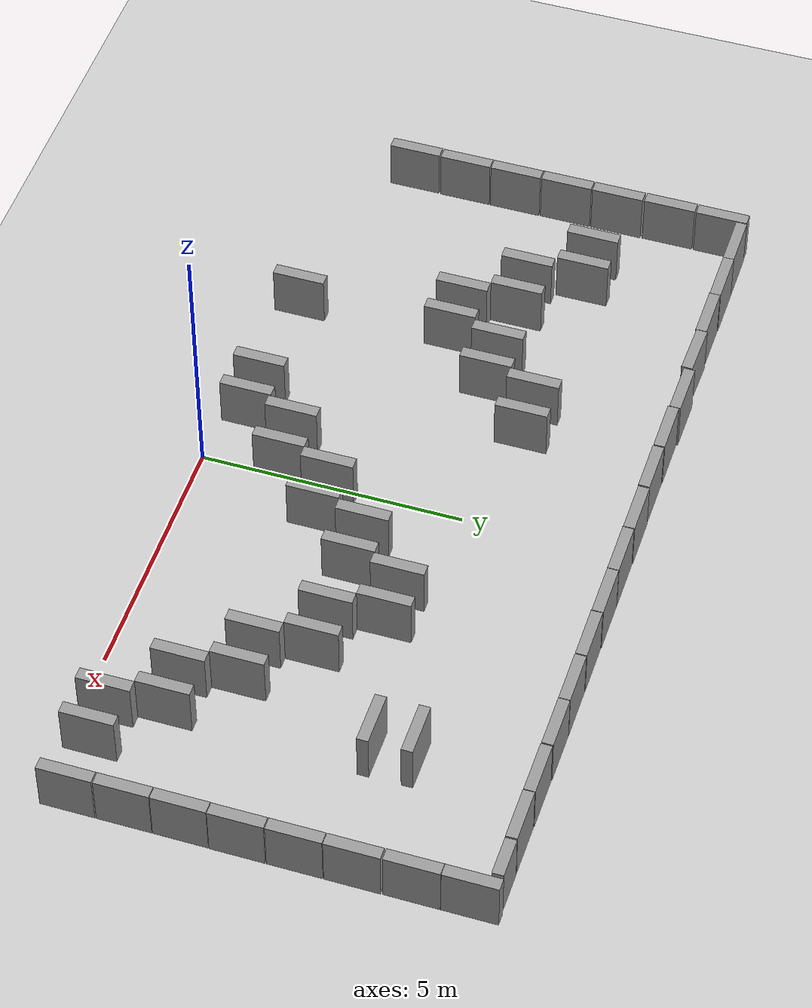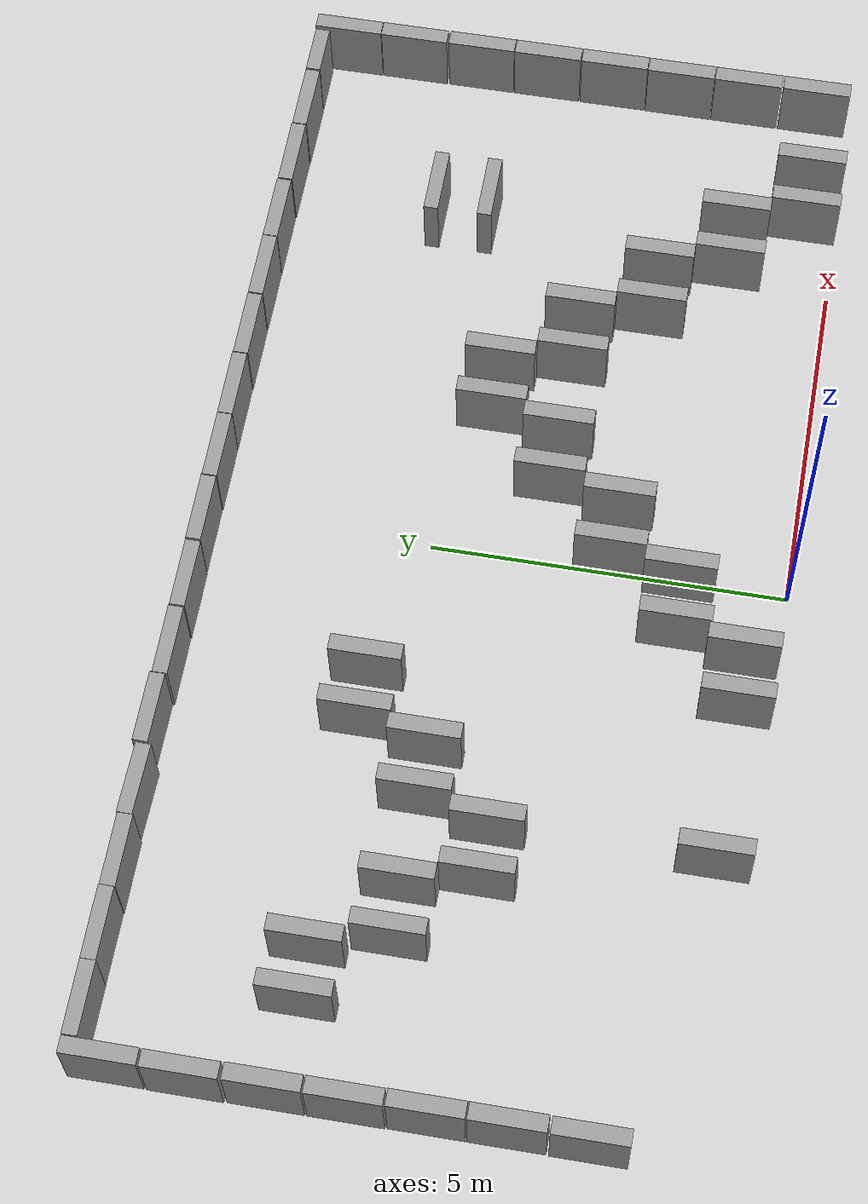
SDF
<sdf version="1.6">
 <world name="default">
  <model name="ground_plane">
   <static>1</static>
   <static>1</static>
   <link name="link">
    <collision name="collision">
     <geometry><plane><normal>0 0 1</normal><size>100 100</size></plane></geometry>
     <surface><friction><ode><mu>100</mu><mu2>50</mu2></ode></friction></surface>
    </collision>
    <visual name="visual">
     <cast_shadows>0</cast_shadows>
     <geometry><plane><normal>0 0 1</normal><size>100 100</size></plane></geometry>
     <material>
      <script><uri>file://media/materials/scripts/gazebo.material</uri><name>Gazebo/Grey</name></script>
     </material>
    </visual>
   </link>
  </model>
  <model name="unit_box_clone">
   <pose>-7.49845 8.11989 0.5 0 -0 0.00017</pose>
   <link name="link">
    <inertial>
     <mass>1</mass>
     <inertia>
      <ixx>0.166667</ixx>
      <ixy>0</ixy>
      <ixz>0</ixz>
      <iyy>0.166667</iyy>
      <iyz>0</iyz>
      <izz>0.166667</izz>
     </inertia>
    </inertial>
    <collision name="collision"><geometry><box><size>1 0.210541 1</size></box></geometry></collision>
    <visual name="visual">
     <geometry><box><size>1 0.210541 1</size></box></geometry>
     <material>
      <script><name>Gazebo/Grey</name><uri>file://media/materials/scripts/gazebo.material</uri></script>
     </material>
    </visual>
   </link>
  </model>
  <model name="unit_box_clone_0">
   <pose>-6.4973 8.11974 0.5 -0 -0 -0.002434</pose>
   <link name="link">
    <inertial>
     <mass>1</mass>
     <inertia>
      <ixx>0.166667</ixx>
      <ixy>0</ixy>
      <ixz>0</ixz>
      <iyy>0.166667</iyy>
      <iyz>0</iyz>
      <izz>0.166667</izz>
     </inertia>
    </inertial>
    <collision name="collision"><geometry><box><size>1 0.210541 1</size></box></geometry></collision>
    <visual name="visual">
     <geometry><box><size>1 0.210541 1</size></box></geometry>
     <material>
      <script><name>Gazebo/Grey</name><uri>file://media/materials/scripts/gazebo.material</uri></script>
     </material>
    </visual>
   </link>
  </model>
  <model name="unit_box_clone_1">
   <pose>-5.49732 8.10849 0.5 -0 -0 -0.002426</pose>
   <link name="link">
    <inertial>
     <mass>1</mass>
     <inertia>
      <ixx>0.166667</ixx>
      <ixy>0</ixy>
      <ixz>0</ixz>
      <iyy>0.166667</iyy>
      <iyz>0</iyz>
      <izz>0.166667</izz>
     </inertia>
    </inertial>
    <collision name="collision"><geometry><box><size>1 0.210541 1</size></box></geometry></collision>
    <visual name="visual">
     <geometry><box><size>1 0.210541 1</size></box></geometry>
     <material>
      <script><name>Gazebo/Grey</name><uri>file://media/materials/scripts/gazebo.material</uri></script>
     </material>
    </visual>
   </link>
  </model>
  <model name="unit_box_clone_2">
   <pose>-4.49485 8.11058 0.499999 1e-06 -2e-06 -0.026985</pose>
   <link name="link">
    <inertial>
     <mass>1</mass>
     <inertia>
      <ixx>0.166667</ixx>
      <ixy>0</ixy>
      <ixz>0</ixz>
      <iyy>0.166667</iyy>
      <iyz>0</iyz>
      <izz>0.166667</izz>
     </inertia>
    </inertial>
    <collision name="collision"><geometry><box><size>1 0.210541 1</size></box></geometry></collision>
    <visual name="visual">
     <geometry><box><size>1 0.210541 1</size></box></geometry>
     <material>
      <script><name>Gazebo/Grey</name><uri>file://media/materials/scripts/gazebo.material</uri></script>
     </material>
    </visual>
   </link>
  </model>
  <model name="unit_box_clone_3">
   <pose>-3.46835 8.15023 0.5 -0 -0 -0.007814</pose>
   <link name="link">
    <inertial>
     <mass>1</mass>
     <inertia>
      <ixx>0.166667</ixx>
      <ixy>0</ixy>
      <ixz>0</ixz>
      <iyy>0.166667</iyy>
      <iyz>0</iyz>
      <izz>0.166667</izz>
     </inertia>
    </inertial>
    <collision name="collision"><geometry><box><size>1 0.210541 1</size></box></geometry></collision>
    <visual name="visual">
     <geometry><box><size>1 0.210541 1</size></box></geometry>
     <material>
      <script><name>Gazebo/Grey</name><uri>file://media/materials/scripts/gazebo.material</uri></script>
     </material>
    </visual>
   </link>
  </model>
  <model name="unit_box_clone_4">
   <pose>-2.46316 8.11857 0.5 0 -0 0.00017</pose>
   <link name="link">
    <inertial>
     <mass>1</mass>
     <inertia>
      <ixx>0.166667</ixx>
      <ixy>0</ixy>
      <ixz>0</ixz>
      <iyy>0.166667</iyy>
      <iyz>0</iyz>
      <izz>0.166667</izz>
     </inertia>
    </inertial>
    <collision name="collision"><geometry><box><size>1 0.210541 1</size></box></geometry></collision>
    <visual name="visual">
     <geometry><box><size>1 0.210541 1</size></box></geometry>
     <material>
      <script><name>Gazebo/Grey</name><uri>file://media/materials/scripts/gazebo.material</uri></script>
     </material>
    </visual>
   </link>
  </model>
  <model name="unit_box_clone_5">
   <pose>-1.44425 8.11191 0.5 0 -0 0.00017</pose>
   <link name="link">
    <inertial>
     <mass>1</mass>
     <inertia>
      <ixx>0.166667</ixx>
      <ixy>0</ixy>
      <ixz>0</ixz>
      <iyy>0.166667</iyy>
      <iyz>0</iyz>
      <izz>0.166667</izz>
     </inertia>
    </inertial>
    <collision name="collision"><geometry><box><size>1 0.210541 1</size></box></geometry></collision>
    <visual name="visual">
     <geometry><box><size>1 0.210541 1</size></box></geometry>
     <material>
      <script><name>Gazebo/Grey</name><uri>file://media/materials/scripts/gazebo.material</uri></script>
     </material>
    </visual>
   </link>
  </model>
  <model name="unit_box_clone_6">
   <pose>-0.418683 8.11857 0.5 0 -0 0.00017</pose>
   <link name="link">
    <inertial>
     <mass>1</mass>
     <inertia>
      <ixx>0.166667</ixx>
      <ixy>0</ixy>
      <ixz>0</ixz>
      <iyy>0.166667</iyy>
      <iyz>0</iyz>
      <izz>0.166667</izz>
     </inertia>
    </inertial>
    <collision name="collision"><geometry><box><size>1 0.210541 1</size></box></geometry></collision>
    <visual name="visual">
     <geometry><box><size>1 0.210541 1</size></box></geometry>
     <material>
      <script><name>Gazebo/Grey</name><uri>file://media/materials/scripts/gazebo.material</uri></script>
     </material>
    </visual>
   </link>
  </model>
  <model name="unit_box_clone_7">
   <pose>0.592836 8.11144 0.5 0 -0 0.00017</pose>
   <link name="link">
    <inertial>
     <mass>1</mass>
     <inertia>
      <ixx>0.166667</ixx>
      <ixy>0</ixy>
      <ixz>0</ixz>
      <iyy>0.166667</iyy>
      <iyz>0</iyz>
      <izz>0.166667</izz>
     </inertia>
    </inertial>
    <collision name="collision"><geometry><box><size>1 0.210541 1</size></box></geometry></collision>
    <visual name="visual">
     <geometry><box><size>1 0.210541 1</size></box></geometry>
     <material>
      <script><name>Gazebo/Grey</name><uri>file://media/materials/scripts/gazebo.material</uri></script>
     </material>
    </visual>
   </link>
  </model>
  <model name="unit_box_clone_8">
   <pose>1.60043 8.10994 0.5 0 -0 0.00017</pose>
   <link name="link">
    <inertial>
     <mass>1</mass>
     <inertia>
      <ixx>0.166667</ixx>
      <ixy>0</ixy>
      <ixz>0</ixz>
      <iyy>0.166667</iyy>
      <iyz>0</iyz>
      <izz>0.166667</izz>
     </inertia>
    </inertial>
    <collision name="collision"><geometry><box><size>1 0.210541 1</size></box></geometry></collision>
    <visual name="visual">
     <geometry><box><size>1 0.210541 1</size></box></geometry>
     <material>
      <script><name>Gazebo/Grey</name><uri>file://media/materials/scripts/gazebo.material</uri></script>
     </material>
    </visual>
   </link>
  </model>
  <model name="unit_box_clone_9">
   <pose>2.60987 8.10276 0.5 0 -0 0.00017</pose>
   <link name="link">
    <inertial>
     <mass>1</mass>
     <inertia>
      <ixx>0.166667</ixx>
      <ixy>0</ixy>
      <ixz>0</ixz>
      <iyy>0.166667</iyy>
      <iyz>0</iyz>
      <izz>0.166667</izz>
     </inertia>
    </inertial>
    <collision name="collision"><geometry><box><size>1 0.210541 1</size></box></geometry></collision>
    <visual name="visual">
     <geometry><box><size>1 0.210541 1</size></box></geometry>
     <material>
      <script><name>Gazebo/Grey</name><uri>file://media/materials/scripts/gazebo.material</uri></script>
     </material>
    </visual>
   </link>
  </model>
  <model name="unit_box_clone_10">
   <pose>3.62649 8.09916 0.5 0 -0 0.00017</pose>
   <link name="link">
    <inertial>
     <mass>1</mass>
     <inertia>
      <ixx>0.166667</ixx>
      <ixy>0</ixy>
      <ixz>0</ixz>
      <iyy>0.166667</iyy>
      <iyz>0</iyz>
      <izz>0.166667</izz>
     </inertia>
    </inertial>
    <collision name="collision"><geometry><box><size>1 0.210541 1</size></box></geometry></collision>
    <visual name="visual">
     <geometry><box><size>1 0.210541 1</size></box></geometry>
     <material>
      <script><name>Gazebo/Grey</name><uri>file://media/materials/scripts/gazebo.material</uri></script>
     </material>
    </visual>
   </link>
  </model>
  <model name="unit_box_clone_11">
   <pose>4.63308 8.09534 0.5 0 0 -0.003388</pose>
   <link name="link">
    <inertial>
     <mass>1</mass>
     <inertia>
      <ixx>0.166667</ixx>
      <ixy>0</ixy>
      <ixz>0</ixz>
      <iyy>0.166667</iyy>
      <iyz>0</iyz>
      <izz>0.166667</izz>
     </inertia>
    </inertial>
    <collision name="collision"><geometry><box><size>1 0.210541 1</size></box></geometry></collision>
    <visual name="visual">
     <geometry><box><size>1 0.210541 1</size></box></geometry>
     <material>
      <script><name>Gazebo/Grey</name><uri>file://media/materials/scripts/gazebo.material</uri></script>
     </material>
    </visual>
   </link>
  </model>
  <model name="unit_box_0_clone_0">
   <pose>8.11522 6.68458 0.5 0 0 -0.000325</pose>
   <link name="link">
    <inertial>
     <mass>1</mass>
     <inertia>
      <ixx>0.166667</ixx>
      <ixy>0</ixy>
      <ixz>0</ixz>
      <iyy>0.166667</iyy>
      <iyz>0</iyz>
      <izz>0.166667</izz>
     </inertia>
    </inertial>
    <collision name="collision"><geometry><box><size>0.230819 1 1</size></box></geometry></collision>
    <visual name="visual">
     <geometry><box><size>0.230819 1 1</size></box></geometry>
     <material>
      <script><name>Gazebo/Grey</name><uri>file://media/materials/scripts/gazebo.material</uri></script>
     </material>
    </visual>
   </link>
  </model>
  <model name="unit_box_0_clone_1">
   <pose>8.11915 5.6517 0.5 0 -0 0.000224</pose>
   <link name="link">
    <inertial>
     <mass>1</mass>
     <inertia>
      <ixx>0.166667</ixx>
      <ixy>0</ixy>
      <ixz>0</ixz>
      <iyy>0.166667</iyy>
      <iyz>0</iyz>
      <izz>0.166667</izz>
     </inertia>
    </inertial>
    <collision name="collision"><geometry><box><size>0.230819 1 1</size></box></geometry></collision>
    <visual name="visual">
     <geometry><box><size>0.230819 1 1</size></box></geometry>
     <material>
      <script><name>Gazebo/Grey</name><uri>file://media/materials/scripts/gazebo.material</uri></script>
     </material>
    </visual>
   </link>
  </model>
  <model name="unit_box_0_clone_2">
   <pose>8.11914 4.64016 0.5 0 -0 0.000318</pose>
   <link name="link">
    <inertial>
     <mass>1</mass>
     <inertia>
      <ixx>0.166667</ixx>
      <ixy>0</ixy>
      <ixz>0</ixz>
      <iyy>0.166667</iyy>
      <iyz>0</iyz>
      <izz>0.166667</izz>
     </inertia>
    </inertial>
    <collision name="collision"><geometry><box><size>0.230819 1 1</size></box></geometry></collision>
    <visual name="visual">
     <geometry><box><size>0.230819 1 1</size></box></geometry>
     <material>
      <script><name>Gazebo/Grey</name><uri>file://media/materials/scripts/gazebo.material</uri></script>
     </material>
    </visual>
   </link>
  </model>
  <model name="unit_box_0_clone_3">
   <pose>8.11914 3.62228 0.5 0 -0 0.000299</pose>
   <link name="link">
    <inertial>
     <mass>1</mass>
     <inertia>
      <ixx>0.166667</ixx>
      <ixy>0</ixy>
      <ixz>0</ixz>
      <iyy>0.166667</iyy>
      <iyz>0</iyz>
      <izz>0.166667</izz>
     </inertia>
    </inertial>
    <collision name="collision"><geometry><box><size>0.230819 1 1</size></box></geometry></collision>
    <visual name="visual">
     <geometry><box><size>0.230819 1 1</size></box></geometry>
     <material>
      <script><name>Gazebo/Grey</name><uri>file://media/materials/scripts/gazebo.material</uri></script>
     </material>
    </visual>
   </link>
  </model>
  <model name="unit_box_0_clone_4">
   <pose>8.11332 2.61063 0.5 -0 -0 -0.000934</pose>
   <link name="link">
    <inertial>
     <mass>1</mass>
     <inertia>
      <ixx>0.166667</ixx>
      <ixy>0</ixy>
      <ixz>0</ixz>
      <iyy>0.166667</iyy>
      <iyz>0</iyz>
      <izz>0.166667</izz>
     </inertia>
    </inertial>
    <collision name="collision"><geometry><box><size>0.230819 1 1</size></box></geometry></collision>
    <visual name="visual">
     <geometry><box><size>0.230819 1 1</size></box></geometry>
     <material>
      <script><name>Gazebo/Grey</name><uri>file://media/materials/scripts/gazebo.material</uri></script>
     </material>
    </visual>
   </link>
  </model>
  <model name="unit_box_0_clone_5">
   <pose>8.11277 1.59919 0.5 0 -0 0.000299</pose>
   <link name="link">
    <inertial>
     <mass>1</mass>
     <inertia>
      <ixx>0.166667</ixx>
      <ixy>0</ixy>
      <ixz>0</ixz>
      <iyy>0.166667</iyy>
      <iyz>0</iyz>
      <izz>0.166667</izz>
     </inertia>
    </inertial>
    <collision name="collision"><geometry><box><size>0.230819 1 1</size></box></geometry></collision>
    <visual name="visual">
     <geometry><box><size>0.230819 1 1</size></box></geometry>
     <material>
      <script><name>Gazebo/Grey</name><uri>file://media/materials/scripts/gazebo.material</uri></script>
     </material>
    </visual>
   </link>
  </model>
  <model name="unit_box_0_clone_6">
   <pose>8.11277 0.574938 0.5 0 -0 0.000299</pose>
   <link name="link">
    <inertial>
     <mass>1</mass>
     <inertia>
      <ixx>0.166667</ixx>
      <ixy>0</ixy>
      <ixz>0</ixz>
      <iyy>0.166667</iyy>
      <iyz>0</iyz>
      <izz>0.166667</izz>
     </inertia>
    </inertial>
    <collision name="collision"><geometry><box><size>0.230819 1 1</size></box></geometry></collision>
    <visual name="visual">
     <geometry><box><size>0.230819 1 1</size></box></geometry>
     <material>
      <script><name>Gazebo/Grey</name><uri>file://media/materials/scripts/gazebo.material</uri></script>
     </material>
    </visual>
   </link>
  </model>
  <model name="unit_box_0_clone_4_clone">
   <pose>-8.12647 7.71769 0.5 0 -0 0.000299</pose>
   <link name="link">
    <inertial>
     <mass>1</mass>
     <inertia>
      <ixx>0.166667</ixx>
      <ixy>0</ixy>
      <ixz>0</ixz>
      <iyy>0.166667</iyy>
      <iyz>0</iyz>
      <izz>0.166667</izz>
     </inertia>
    </inertial>
    <collision name="collision"><geometry><box><size>0.230819 1 1</size></box></geometry></collision>
    <visual name="visual">
     <geometry><box><size>0.230819 1 1</size></box></geometry>
     <material>
      <script><name>Gazebo/Grey</name><uri>file://media/materials/scripts/gazebo.material</uri></script>
     </material>
    </visual>
   </link>
  </model>
  <model name="unit_box_0_clone_4_clone_0">
   <pose>-8.13281 6.68715 0.5 0 -0 0.000299</pose>
   <link name="link">
    <inertial>
     <mass>1</mass>
     <inertia>
      <ixx>0.166667</ixx>
      <ixy>0</ixy>
      <ixz>0</ixz>
      <iyy>0.166667</iyy>
      <iyz>0</iyz>
      <izz>0.166667</izz>
     </inertia>
    </inertial>
    <collision name="collision"><geometry><box><size>0.230819 1 1</size></box></geometry></collision>
    <visual name="visual">
     <geometry><box><size>0.230819 1 1</size></box></geometry>
     <material>
      <script><name>Gazebo/Grey</name><uri>file://media/materials/scripts/gazebo.material</uri></script>
     </material>
    </visual>
   </link>
  </model>
  <model name="unit_box_0_clone_4_clone_1">
   <pose>-8.12606 5.64722 0.5 0 -0 0.000299</pose>
   <link name="link">
    <inertial>
     <mass>1</mass>
     <inertia>
      <ixx>0.166667</ixx>
      <ixy>0</ixy>
      <ixz>0</ixz>
      <iyy>0.166667</iyy>
      <iyz>0</iyz>
      <izz>0.166667</izz>
     </inertia>
    </inertial>
    <collision name="collision"><geometry><box><size>0.230819 1 1</size></box></geometry></collision>
    <visual name="visual">
     <geometry><box><size>0.230819 1 1</size></box></geometry>
     <material>
      <script><name>Gazebo/Grey</name><uri>file://media/materials/scripts/gazebo.material</uri></script>
     </material>
    </visual>
   </link>
  </model>
  <model name="unit_box_0_clone_4_clone_2">
   <pose>-8.12607 4.6208 0.5 0 -0 0.000299</pose>
   <link name="link">
    <inertial>
     <mass>1</mass>
     <inertia>
      <ixx>0.166667</ixx>
      <ixy>0</ixy>
      <ixz>0</ixz>
      <iyy>0.166667</iyy>
      <iyz>0</iyz>
      <izz>0.166667</izz>
     </inertia>
    </inertial>
    <collision name="collision"><geometry><box><size>0.230819 1 1</size></box></geometry></collision>
    <visual name="visual">
     <geometry><box><size>0.230819 1 1</size></box></geometry>
     <material>
      <script><name>Gazebo/Grey</name><uri>file://media/materials/scripts/gazebo.material</uri></script>
     </material>
    </visual>
   </link>
  </model>
  <model name="unit_box_0_clone_4_clone_3">
   <pose>-8.11932 3.59437 0.5 0 -0 0.000299</pose>
   <link name="link">
    <inertial>
     <mass>1</mass>
     <inertia>
      <ixx>0.166667</ixx>
      <ixy>0</ixy>
      <ixz>0</ixz>
      <iyy>0.166667</iyy>
      <iyz>0</iyz>
      <izz>0.166667</izz>
     </inertia>
    </inertial>
    <collision name="collision"><geometry><box><size>0.230819 1 1</size></box></geometry></collision>
    <visual name="visual">
     <geometry><box><size>0.230819 1 1</size></box></geometry>
     <material>
      <script><name>Gazebo/Grey</name><uri>file://media/materials/scripts/gazebo.material</uri></script>
     </material>
    </visual>
   </link>
  </model>
  <model name="unit_box_0_clone_4_clone_4">
   <pose>-8.11932 2.57471 0.5 0 -0 0.000299</pose>
   <link name="link">
    <inertial>
     <mass>1</mass>
     <inertia>
      <ixx>0.166667</ixx>
      <ixy>0</ixy>
      <ixz>0</ixz>
      <iyy>0.166667</iyy>
      <iyz>0</iyz>
      <izz>0.166667</izz>
     </inertia>
    </inertial>
    <collision name="collision"><geometry><box><size>0.230819 1 1</size></box></geometry></collision>
    <visual name="visual">
     <geometry><box><size>0.230819 1 1</size></box></geometry>
     <material>
      <script><name>Gazebo/Grey</name><uri>file://media/materials/scripts/gazebo.material</uri></script>
     </material>
    </visual>
   </link>
  </model>
  <model name="unit_box_0_clone_4_clone_5">
   <pose>-8.12608 1.54157 0.5 0 -0 0.000299</pose>
   <link name="link">
    <inertial>
     <mass>1</mass>
     <inertia>
      <ixx>0.166667</ixx>
      <ixy>0</ixy>
      <ixz>0</ixz>
      <iyy>0.166667</iyy>
      <iyz>0</iyz>
      <izz>0.166667</izz>
     </inertia>
    </inertial>
    <collision name="collision"><geometry><box><size>0.230819 1 1</size></box></geometry></collision>
    <visual name="visual">
     <geometry><box><size>0.230819 1 1</size></box></geometry>
     <material>
      <script><name>Gazebo/Grey</name><uri>file://media/materials/scripts/gazebo.material</uri></script>
     </material>
    </visual>
   </link>
  </model>
  <model name="unit_box_0_clone_0_clone">
   <pose>8.11438 7.69322 0.5 0 -0 0.000206</pose>
   <link name="link">
    <inertial>
     <mass>1</mass>
     <inertia>
      <ixx>0.166667</ixx>
      <ixy>0</ixy>
      <ixz>0</ixz>
      <iyy>0.166667</iyy>
      <iyz>0</iyz>
      <izz>0.166667</izz>
     </inertia>
    </inertial>
    <collision name="collision"><geometry><box><size>0.230819 1 1</size></box></geometry></collision>
    <visual name="visual">
     <geometry><box><size>0.230819 1 1</size></box></geometry>
     <material>
      <script><name>Gazebo/Grey</name><uri>file://media/materials/scripts/gazebo.material</uri></script>
     </material>
    </visual>
   </link>
  </model>
  <model name="unit_box_clone_11_clone">
   <pose>5.6544 8.0837 0.5 0 -0 -0.00294</pose>
   <link name="link">
    <inertial>
     <mass>1</mass>
     <inertia>
      <ixx>0.166667</ixx>
      <ixy>0</ixy>
      <ixz>0</ixz>
      <iyy>0.166667</iyy>
      <iyz>0</iyz>
      <izz>0.166667</izz>
     </inertia>
    </inertial>
    <collision name="collision"><geometry><box><size>1 0.210541 1</size></box></geometry></collision>
    <visual name="visual">
     <geometry><box><size>1 0.210541 1</size></box></geometry>
     <material>
      <script><name>Gazebo/Grey</name><uri>file://media/materials/scripts/gazebo.material</uri></script>
     </material>
    </visual>
   </link>
  </model>
  <model name="unit_box_clone_11_clone_0">
   <pose>6.66438 8.07353 0.5 0 0 -0.00331</pose>
   <link name="link">
    <inertial>
     <mass>1</mass>
     <inertia>
      <ixx>0.166667</ixx>
      <ixy>0</ixy>
      <ixz>0</ixz>
      <iyy>0.166667</iyy>
      <iyz>0</iyz>
      <izz>0.166667</izz>
     </inertia>
    </inertial>
    <collision name="collision"><geometry><box><size>1 0.210541 1</size></box></geometry></collision>
    <visual name="visual">
     <geometry><box><size>1 0.210541 1</size></box></geometry>
     <material>
      <script><name>Gazebo/Grey</name><uri>file://media/materials/scripts/gazebo.material</uri></script>
     </material>
    </visual>
   </link>
  </model>
  <model name="unit_box_clone_11_clone_1_clone">
   <pose>7.56439 8.07325 0.499997 1e-06 8e-06 -0.00323</pose>
   <link name="link">
    <inertial>
     <mass>1</mass>
     <inertia>
      <ixx>0.166667</ixx>
      <ixy>0</ixy>
      <ixz>0</ixz>
      <iyy>0.166667</iyy>
      <iyz>0</iyz>
      <izz>0.166667</izz>
     </inertia>
    </inertial>
    <collision name="collision"><geometry><box><size>0.750223 0.210541 1</size></box></geometry></collision>
    <visual name="visual">
     <geometry><box><size>0.750223 0.210541 1</size></box></geometry>
     <material>
      <script><name>Gazebo/Grey</name><uri>file://media/materials/scripts/gazebo.material</uri></script>
     </material>
    </visual>
   </link>
  </model>
  <model name="unit_box_0_clone_4_clone_1_clone">
   <pose>-6.86673 5.5047 0.5 0 -0 0.000243</pose>
   <link name="link">
    <inertial>
     <mass>1</mass>
     <inertia>
      <ixx>0.166667</ixx>
      <ixy>0</ixy>
      <ixz>0</ixz>
      <iyy>0.166667</iyy>
      <iyz>0</iyz>
      <izz>0.166667</izz>
     </inertia>
    </inertial>
    <collision name="collision"><geometry><box><size>0.230819 1 1</size></box></geometry></collision>
    <visual name="visual">
     <geometry><box><size>0.230819 1 1</size></box></geometry>
     <material>
      <script><name>Gazebo/Grey</name><uri>file://media/materials/scripts/gazebo.material</uri></script>
     </material>
    </visual>
   </link>
  </model>
  <model name="unit_box_0_clone_4_clone_1_clone_0">
   <pose>-6.13479 5.51711 0.5 0 -0 0.000276</pose>
   <link name="link">
    <inertial>
     <mass>1</mass>
     <inertia>
      <ixx>0.166667</ixx>
      <ixy>0</ixy>
      <ixz>0</ixz>
      <iyy>0.166667</iyy>
      <iyz>0</iyz>
      <izz>0.166667</izz>
     </inertia>
    </inertial>
    <collision name="collision"><geometry><box><size>0.230819 1 1</size></box></geometry></collision>
    <visual name="visual">
     <geometry><box><size>0.230819 1 1</size></box></geometry>
     <material>
      <script><name>Gazebo/Grey</name><uri>file://media/materials/scripts/gazebo.material</uri></script>
     </material>
    </visual>
   </link>
  </model>
  <model name="unit_box_0_clone_4_clone_1_clone_1">
   <pose>-5.86967 4.48824 0.5 0 -0 0.000298</pose>
   <link name="link">
    <inertial>
     <mass>1</mass>
     <inertia>
      <ixx>0.166667</ixx>
      <ixy>0</ixy>
      <ixz>0</ixz>
      <iyy>0.166667</iyy>
      <iyz>0</iyz>
      <izz>0.166667</izz>
     </inertia>
    </inertial>
    <collision name="collision"><geometry><box><size>0.230819 1 1</size></box></geometry></collision>
    <visual name="visual">
     <geometry><box><size>0.230819 1 1</size></box></geometry>
     <material>
      <script><name>Gazebo/Grey</name><uri>file://media/materials/scripts/gazebo.material</uri></script>
     </material>
    </visual>
   </link>
  </model>
  <model name="unit_box_0_clone_4_clone_1_clone_2">
   <pose>-5.11514 4.51022 0.5 0 -0 0.000183</pose>
   <link name="link">
    <inertial>
     <mass>1</mass>
     <inertia>
      <ixx>0.166667</ixx>
      <ixy>0</ixy>
      <ixz>0</ixz>
      <iyy>0.166667</iyy>
      <iyz>0</iyz>
      <izz>0.166667</izz>
     </inertia>
    </inertial>
    <collision name="collision"><geometry><box><size>0.230819 1 1</size></box></geometry></collision>
    <visual name="visual">
     <geometry><box><size>0.230819 1 1</size></box></geometry>
     <material>
      <script><name>Gazebo/Grey</name><uri>file://media/materials/scripts/gazebo.material</uri></script>
     </material>
    </visual>
   </link>
  </model>
  <model name="unit_box_0_clone_4_clone_1_clone_3">
   <pose>-4.87341 3.50662 0.5 0 -0 0.00015</pose>
   <link name="link">
    <inertial>
     <mass>1</mass>
     <inertia>
      <ixx>0.166667</ixx>
      <ixy>0</ixy>
      <ixz>0</ixz>
      <iyy>0.166667</iyy>
      <iyz>0</iyz>
      <izz>0.166667</izz>
     </inertia>
    </inertial>
    <collision name="collision"><geometry><box><size>0.230819 1 1</size></box></geometry></collision>
    <visual name="visual">
     <geometry><box><size>0.230819 1 1</size></box></geometry>
     <material>
      <script><name>Gazebo/Grey</name><uri>file://media/materials/scripts/gazebo.material</uri></script>
     </material>
    </visual>
   </link>
  </model>
  <model name="unit_box_0_clone_4_clone_1_clone_4">
   <pose>-4.14086 3.49929 0.5 0 -0 0.000128</pose>
   <link name="link">
    <inertial>
     <mass>1</mass>
     <inertia>
      <ixx>0.166667</ixx>
      <ixy>0</ixy>
      <ixz>0</ixz>
      <iyy>0.166667</iyy>
      <iyz>0</iyz>
      <izz>0.166667</izz>
     </inertia>
    </inertial>
    <collision name="collision"><geometry><box><size>0.230819 1 1</size></box></geometry></collision>
    <visual name="visual">
     <geometry><box><size>0.230819 1 1</size></box></geometry>
     <material>
      <script><name>Gazebo/Grey</name><uri>file://media/materials/scripts/gazebo.material</uri></script>
     </material>
    </visual>
   </link>
  </model>
  <model name="unit_box_0_clone_4_clone_1_clone_5">
   <pose>-3.8698 4.51021 0.5 0 -0 0.000243</pose>
   <link name="link">
    <inertial>
     <mass>1</mass>
     <inertia>
      <ixx>0.166667</ixx>
      <ixy>0</ixy>
      <ixz>0</ixz>
      <iyy>0.166667</iyy>
      <iyz>0</iyz>
      <izz>0.166667</izz>
     </inertia>
    </inertial>
    <collision name="collision"><geometry><box><size>0.230819 1 1</size></box></geometry></collision>
    <visual name="visual">
     <geometry><box><size>0.230819 1 1</size></box></geometry>
     <material>
      <script><name>Gazebo/Grey</name><uri>file://media/materials/scripts/gazebo.material</uri></script>
     </material>
    </visual>
   </link>
  </model>
  <model name="unit_box_0_clone_4_clone_1_clone_6">
   <pose>-3.12993 4.51021 0.5 0 -0 0.000276</pose>
   <link name="link">
    <inertial>
     <mass>1</mass>
     <inertia>
      <ixx>0.166667</ixx>
      <ixy>0</ixy>
      <ixz>0</ixz>
      <iyy>0.166667</iyy>
      <iyz>0</iyz>
      <izz>0.166667</izz>
     </inertia>
    </inertial>
    <collision name="collision"><geometry><box><size>0.230819 1 1</size></box></geometry></collision>
    <visual name="visual">
     <geometry><box><size>0.230819 1 1</size></box></geometry>
     <material>
      <script><name>Gazebo/Grey</name><uri>file://media/materials/scripts/gazebo.material</uri></script>
     </material>
    </visual>
   </link>
  </model>
  <model name="unit_box_0_clone_4_clone_1_clone_7">
   <pose>-2.88086 5.49182 0.5 0 -0 0.000298</pose>
   <link name="link">
    <inertial>
     <mass>1</mass>
     <inertia>
      <ixx>0.166667</ixx>
      <ixy>0</ixy>
      <ixz>0</ixz>
      <iyy>0.166667</iyy>
      <iyz>0</iyz>
      <izz>0.166667</izz>
     </inertia>
    </inertial>
    <collision name="collision"><geometry><box><size>0.230819 1 1</size></box></geometry></collision>
    <visual name="visual">
     <geometry><box><size>0.230819 1 1</size></box></geometry>
     <material>
      <script><name>Gazebo/Grey</name><uri>file://media/materials/scripts/gazebo.material</uri></script>
     </material>
    </visual>
   </link>
  </model>
  <model name="unit_box_0_clone_4_clone_1_clone_8">
   <pose>-2.13366 5.49182 0.5 0 -0 0.000183</pose>
   <link name="link">
    <inertial>
     <mass>1</mass>
     <inertia>
      <ixx>0.166667</ixx>
      <ixy>0</ixy>
      <ixz>0</ixz>
      <iyy>0.166667</iyy>
      <iyz>0</iyz>
      <izz>0.166667</izz>
     </inertia>
    </inertial>
    <collision name="collision"><geometry><box><size>0.230819 1 1</size></box></geometry></collision>
    <visual name="visual">
     <geometry><box><size>0.230819 1 1</size></box></geometry>
     <material>
      <script><name>Gazebo/Grey</name><uri>file://media/materials/scripts/gazebo.material</uri></script>
     </material>
    </visual>
   </link>
  </model>
  <model name="unit_box_0_clone_4_clone_1_clone_4_clone">
   <pose>-1.87003 0.506783 0.5 0 -0 0.000298</pose>
   <link name="link">
    <inertial>
     <mass>1</mass>
     <inertia>
      <ixx>0.166667</ixx>
      <ixy>0</ixy>
      <ixz>0</ixz>
      <iyy>0.166667</iyy>
      <iyz>0</iyz>
      <izz>0.166667</izz>
     </inertia>
    </inertial>
    <collision name="collision"><geometry><box><size>0.230819 1 1</size></box></geometry></collision>
    <visual name="visual">
     <geometry><box><size>0.230819 1 1</size></box></geometry>
     <material>
      <script><name>Gazebo/Grey</name><uri>file://media/materials/scripts/gazebo.material</uri></script>
     </material>
    </visual>
   </link>
  </model>
  <model name="unit_box_0_clone_4_clone_1_clone_4_clone_3">
   <pose>-0.870202 1.47991 0.5 0 -0 0.000211</pose>
   <link name="link">
    <inertial>
     <mass>1</mass>
     <inertia>
      <ixx>0.166667</ixx>
      <ixy>0</ixy>
      <ixz>0</ixz>
      <iyy>0.166667</iyy>
      <iyz>0</iyz>
      <izz>0.166667</izz>
     </inertia>
    </inertial>
    <collision name="collision"><geometry><box><size>0.230819 1 1</size></box></geometry></collision>
    <visual name="visual">
     <geometry><box><size>0.230819 1 1</size></box></geometry>
     <material>
      <script><name>Gazebo/Grey</name><uri>file://media/materials/scripts/gazebo.material</uri></script>
     </material>
    </visual>
   </link>
  </model>
  <model name="unit_box_0_clone_4_clone_1_clone_4_clone_4">
   <pose>-0.093034 1.5091 0.5 0 -0 -0.000668</pose>
   <link name="link">
    <inertial>
     <mass>1</mass>
     <inertia>
      <ixx>0.166667</ixx>
      <ixy>0</ixy>
      <ixz>0</ixz>
      <iyy>0.166667</iyy>
      <iyz>0</iyz>
      <izz>0.166667</izz>
     </inertia>
    </inertial>
    <collision name="collision"><geometry><box><size>0.230819 1 1</size></box></geometry></collision>
    <visual name="visual">
     <geometry><box><size>0.230819 1 1</size></box></geometry>
     <material>
      <script><name>Gazebo/Grey</name><uri>file://media/materials/scripts/gazebo.material</uri></script>
     </material>
    </visual>
   </link>
  </model>
  <model name="unit_box_0_clone_4_clone_1_clone_4_clone_2_clone_0">
   <pose>-1.11711 0.512817 0.5 0 -0 0.000169</pose>
   <link name="link">
    <inertial>
     <mass>1</mass>
     <inertia>
      <ixx>0.166667</ixx>
      <ixy>0</ixy>
      <ixz>0</ixz>
      <iyy>0.166667</iyy>
      <iyz>0</iyz>
      <izz>0.166667</izz>
     </inertia>
    </inertial>
    <collision name="collision"><geometry><box><size>0.230819 1 1</size></box></geometry></collision>
    <visual name="visual">
     <geometry><box><size>0.230819 1 1</size></box></geometry>
     <material>
      <script><name>Gazebo/Grey</name><uri>file://media/materials/scripts/gazebo.material</uri></script>
     </material>
    </visual>
   </link>
  </model>
  <model name="unit_box_0_clone_4_clone_1_clone_4_clone_6_clone_5">
   <pose>0.119926 2.50896 0.5 0 0 -0.000763</pose>
   <link name="link">
    <inertial>
     <mass>1</mass>
     <inertia>
      <ixx>0.166667</ixx>
      <ixy>0</ixy>
      <ixz>0</ixz>
      <iyy>0.166667</iyy>
      <iyz>0</iyz>
      <izz>0.166667</izz>
     </inertia>
    </inertial>
    <collision name="collision"><geometry><box><size>0.230819 1 1</size></box></geometry></collision>
    <visual name="visual">
     <geometry><box><size>0.230819 1 1</size></box></geometry>
     <material>
      <script><name>Gazebo/Grey</name><uri>file://media/materials/scripts/gazebo.material</uri></script>
     </material>
    </visual>
   </link>
  </model>
  <model name="unit_box_0_clone_4_clone_1_clone_4_clone_6_clone_6">
   <pose>0.883885 2.4972 0.5 0 -0 0.00017</pose>
   <link name="link">
    <inertial>
     <mass>1</mass>
     <inertia>
      <ixx>0.166667</ixx>
      <ixy>0</ixy>
      <ixz>0</ixz>
      <iyy>0.166667</iyy>
      <iyz>0</iyz>
      <izz>0.166667</izz>
     </inertia>
    </inertial>
    <collision name="collision"><geometry><box><size>0.230819 1 1</size></box></geometry></collision>
    <visual name="visual">
     <geometry><box><size>0.230819 1 1</size></box></geometry>
     <material>
      <script><name>Gazebo/Grey</name><uri>file://media/materials/scripts/gazebo.material</uri></script>
     </material>
    </visual>
   </link>
  </model>
  <model name="unit_box_0_clone_4_clone_1_clone_4_clone_6_clone_7">
   <pose>1.12227 3.50824 0.5 0 -0 0.000147</pose>
   <link name="link">
    <inertial>
     <mass>1</mass>
     <inertia>
      <ixx>0.166667</ixx>
      <ixy>0</ixy>
      <ixz>0</ixz>
      <iyy>0.166667</iyy>
      <iyz>0</iyz>
      <izz>0.166667</izz>
     </inertia>
    </inertial>
    <collision name="collision"><geometry><box><size>0.230819 1 1</size></box></geometry></collision>
    <visual name="visual">
     <geometry><box><size>0.230819 1 1</size></box></geometry>
     <material>
      <script><name>Gazebo/Grey</name><uri>file://media/materials/scripts/gazebo.material</uri></script>
     </material>
    </visual>
   </link>
  </model>
  <model name="unit_box_0_clone_4_clone_1_clone_4_clone_6_clone_8">
   <pose>1.88417 3.50419 0.5 0 -0 0.000149</pose>
   <link name="link">
    <inertial>
     <mass>1</mass>
     <inertia>
      <ixx>0.166667</ixx>
      <ixy>0</ixy>
      <ixz>0</ixz>
      <iyy>0.166667</iyy>
      <iyz>0</iyz>
      <izz>0.166667</izz>
     </inertia>
    </inertial>
    <collision name="collision"><geometry><box><size>0.230819 1 1</size></box></geometry></collision>
    <visual name="visual">
     <geometry><box><size>0.230819 1 1</size></box></geometry>
     <material>
      <script><name>Gazebo/Grey</name><uri>file://media/materials/scripts/gazebo.material</uri></script>
     </material>
    </visual>
   </link>
  </model>
  <model name="unit_box_0_clone_4_clone_1_clone_4_clone_6_clone_9">
   <pose>2.12686 4.4965 0.5 0 -0 0.000224</pose>
   <link name="link">
    <inertial>
     <mass>1</mass>
     <inertia>
      <ixx>0.166667</ixx>
      <ixy>0</ixy>
      <ixz>0</ixz>
      <iyy>0.166667</iyy>
      <iyz>0</iyz>
      <izz>0.166667</izz>
     </inertia>
    </inertial>
    <collision name="collision"><geometry><box><size>0.230819 1 1</size></box></geometry></collision>
    <visual name="visual">
     <geometry><box><size>0.230819 1 1</size></box></geometry>
     <material>
      <script><name>Gazebo/Grey</name><uri>file://media/materials/scripts/gazebo.material</uri></script>
     </material>
    </visual>
   </link>
  </model>
  <model name="unit_box_0_clone_4_clone_1_clone_4_clone_6_clone_10">
   <pose>2.87649 4.4965 0.5 0 -0 0.000247</pose>
   <link name="link">
    <inertial>
     <mass>1</mass>
     <inertia>
      <ixx>0.166667</ixx>
      <ixy>0</ixy>
      <ixz>0</ixz>
      <iyy>0.166667</iyy>
      <iyz>0</iyz>
      <izz>0.166667</izz>
     </inertia>
    </inertial>
    <collision name="collision"><geometry><box><size>0.230819 1 1</size></box></geometry></collision>
    <visual name="visual">
     <geometry><box><size>0.230819 1 1</size></box></geometry>
     <material>
      <script><name>Gazebo/Grey</name><uri>file://media/materials/scripts/gazebo.material</uri></script>
     </material>
    </visual>
   </link>
  </model>
  <model name="unit_box_0_clone_4_clone_1_clone_4_clone_6_clone_17">
   <pose>3.11407 3.49554 0.5 0 -0 0.000245</pose>
   <link name="link">
    <inertial>
     <mass>1</mass>
     <inertia>
      <ixx>0.166667</ixx>
      <ixy>0</ixy>
      <ixz>0</ixz>
      <iyy>0.166667</iyy>
      <iyz>0</iyz>
      <izz>0.166667</izz>
     </inertia>
    </inertial>
    <collision name="collision"><geometry><box><size>0.230819 1 1</size></box></geometry></collision>
    <visual name="visual">
     <geometry><box><size>0.230819 1 1</size></box></geometry>
     <material>
      <script><name>Gazebo/Grey</name><uri>file://media/materials/scripts/gazebo.material</uri></script>
     </material>
    </visual>
   </link>
  </model>
  <model name="unit_box_0_clone_4_clone_1_clone_4_clone_6_clone_18">
   <pose>3.88015 3.50064 0.5 0 -0 0.00017</pose>
   <link name="link">
    <inertial>
     <mass>1</mass>
     <inertia>
      <ixx>0.166667</ixx>
      <ixy>0</ixy>
      <ixz>0</ixz>
      <iyy>0.166667</iyy>
      <iyz>0</iyz>
      <izz>0.166667</izz>
     </inertia>
    </inertial>
    <collision name="collision"><geometry><box><size>0.230819 1 1</size></box></geometry></collision>
    <visual name="visual">
     <geometry><box><size>0.230819 1 1</size></box></geometry>
     <material>
      <script><name>Gazebo/Grey</name><uri>file://media/materials/scripts/gazebo.material</uri></script>
     </material>
    </visual>
   </link>
  </model>
  <model name="unit_box_0_clone_4_clone_1_clone_4_clone_6_clone_19">
   <pose>4.11696 2.50158 0.5 0 -0 0.000147</pose>
   <link name="link">
    <inertial>
     <mass>1</mass>
     <inertia>
      <ixx>0.166667</ixx>
      <ixy>0</ixy>
      <ixz>0</ixz>
      <iyy>0.166667</iyy>
      <iyz>0</iyz>
      <izz>0.166667</izz>
     </inertia>
    </inertial>
    <collision name="collision"><geometry><box><size>0.230819 1 1</size></box></geometry></collision>
    <visual name="visual">
     <geometry><box><size>0.230819 1 1</size></box></geometry>
     <material>
      <script><name>Gazebo/Grey</name><uri>file://media/materials/scripts/gazebo.material</uri></script>
     </material>
    </visual>
   </link>
  </model>
  <model name="unit_box_0_clone_4_clone_1_clone_4_clone_6_clone_20">
   <pose>4.8792 2.49418 0.5 0 -0 0.00015</pose>
   <link name="link">
    <inertial>
     <mass>1</mass>
     <inertia>
      <ixx>0.166667</ixx>
      <ixy>0</ixy>
      <ixz>0</ixz>
      <iyy>0.166667</iyy>
      <iyz>0</iyz>
      <izz>0.166667</izz>
     </inertia>
    </inertial>
    <collision name="collision"><geometry><box><size>0.230819 1 1</size></box></geometry></collision>
    <visual name="visual">
     <geometry><box><size>0.230819 1 1</size></box></geometry>
     <material>
      <script><name>Gazebo/Grey</name><uri>file://media/materials/scripts/gazebo.material</uri></script>
     </material>
    </visual>
   </link>
  </model>
  <model name="unit_box_0_clone_4_clone_1_clone_4_clone_6_clone_21">
   <pose>5.11977 1.49449 0.5 0 -0 0.000224</pose>
   <link name="link">
    <inertial>
     <mass>1</mass>
     <inertia>
      <ixx>0.166667</ixx>
      <ixy>0</ixy>
      <ixz>0</ixz>
      <iyy>0.166667</iyy>
      <iyz>0</iyz>
      <izz>0.166667</izz>
     </inertia>
    </inertial>
    <collision name="collision"><geometry><box><size>0.230819 1 1</size></box></geometry></collision>
    <visual name="visual">
     <geometry><box><size>0.230819 1 1</size></box></geometry>
     <material>
      <script><name>Gazebo/Grey</name><uri>file://media/materials/scripts/gazebo.material</uri></script>
     </material>
    </visual>
   </link>
  </model>
  <model name="unit_box_0_clone_4_clone_1_clone_4_clone_6_clone_22">
   <pose>5.87711 1.49963 0.5 0 -0 0.000169</pose>
   <link name="link">
    <inertial>
     <mass>1</mass>
     <inertia>
      <ixx>0.166667</ixx>
      <ixy>0</ixy>
      <ixz>0</ixz>
      <iyy>0.166667</iyy>
      <iyz>0</iyz>
      <izz>0.166667</izz>
     </inertia>
    </inertial>
    <collision name="collision"><geometry><box><size>0.230819 1 1</size></box></geometry></collision>
    <visual name="visual">
     <geometry><box><size>0.230819 1 1</size></box></geometry>
     <material>
      <script><name>Gazebo/Grey</name><uri>file://media/materials/scripts/gazebo.material</uri></script>
     </material>
    </visual>
   </link>
  </model>
  <model name="unit_box_0_clone_4_clone_1_clone_4_clone_6_clone_23">
   <pose>6.11869 0.504357 0.5 0 -0 0.000167</pose>
   <link name="link">
    <inertial>
     <mass>1</mass>
     <inertia>
      <ixx>0.166667</ixx>
      <ixy>0</ixy>
      <ixz>0</ixz>
      <iyy>0.166667</iyy>
      <iyz>0</iyz>
      <izz>0.166667</izz>
     </inertia>
    </inertial>
    <collision name="collision"><geometry><box><size>0.230819 1 1</size></box></geometry></collision>
    <visual name="visual">
     <geometry><box><size>0.230819 1 1</size></box></geometry>
     <material>
      <script><name>Gazebo/Grey</name><uri>file://media/materials/scripts/gazebo.material</uri></script>
     </material>
    </visual>
   </link>
  </model>
  <model name="unit_box_0_clone_4_clone_1_clone_4_clone_6_clone_24">
   <pose>6.88813 0.504353 0.5 0 -0 0.000244</pose>
   <link name="link">
    <inertial>
     <mass>1</mass>
     <inertia>
      <ixx>0.166667</ixx>
      <ixy>0</ixy>
      <ixz>0</ixz>
      <iyy>0.166667</iyy>
      <iyz>0</iyz>
      <izz>0.166667</izz>
     </inertia>
    </inertial>
    <collision name="collision"><geometry><box><size>0.230819 1 1</size></box></geometry></collision>
    <visual name="visual">
     <geometry><box><size>0.230819 1 1</size></box></geometry>
     <material>
      <script><name>Gazebo/Grey</name><uri>file://media/materials/scripts/gazebo.material</uri></script>
     </material>
    </visual>
   </link>
  </model>
  <model name="unit_box_0_clone_4_clone_1_clone_4_clone_6_clone_26">
   <pose>-4.11631 0.510345 0.499996 -9e-06 -1e-06 6.2e-05</pose>
   <link name="link">
    <inertial>
     <mass>1</mass>
     <inertia>
      <ixx>0.166667</ixx>
      <ixy>0</ixy>
      <ixz>0</ixz>
      <iyy>0.166667</iyy>
      <iyz>0</iyz>
      <izz>0.166667</izz>
     </inertia>
    </inertial>
    <collision name="collision"><geometry><box><size>0.230819 1 1</size></box></geometry></collision>
    <visual name="visual">
     <geometry><box><size>0.230819 1 1</size></box></geometry>
     <material>
      <script><name>Gazebo/Grey</name><uri>file://media/materials/scripts/gazebo.material</uri></script>
     </material>
    </visual>
   </link>
  </model>
  <model name="unit_box_clone_11_clone_clone">
   <pose>5.50831 5.10349 0.499999 -1e-06 2e-06 -0.002931</pose>
   <link name="link">
    <inertial>
     <mass>1</mass>
     <inertia>
      <ixx>0.166667</ixx>
      <ixy>0</ixy>
      <ixz>0</ixz>
      <iyy>0.166667</iyy>
      <iyz>0</iyz>
      <izz>0.166667</izz>
     </inertia>
    </inertial>
    <collision name="collision"><geometry><box><size>1 0.210541 1</size></box></geometry></collision>
    <visual name="visual">
     <geometry><box><size>1 0.210541 1</size></box></geometry>
     <material>
      <script><name>Gazebo/Grey</name><uri>file://media/materials/scripts/gazebo.material</uri></script>
     </material>
    </visual>
   </link>
  </model>
  <model name="unit_box_clone_11_clone_clone_0">
   <pose>5.49481 5.88777 0.5 0 -0 -0.00295</pose>
   <link name="link">
    <inertial>
     <mass>1</mass>
     <inertia>
      <ixx>0.166667</ixx>
      <ixy>0</ixy>
      <ixz>0</ixz>
      <iyy>0.166667</iyy>
      <iyz>0</iyz>
      <izz>0.166667</izz>
     </inertia>
    </inertial>
    <collision name="collision"><geometry><box><size>1 0.210541 1</size></box></geometry></collision>
    <visual name="visual">
     <geometry><box><size>1 0.210541 1</size></box></geometry>
     <material>
      <script><name>Gazebo/Grey</name><uri>file://media/materials/scripts/gazebo.material</uri></script>
     </material>
    </visual>
   </link>
  </model>
 </world>
</sdf>
